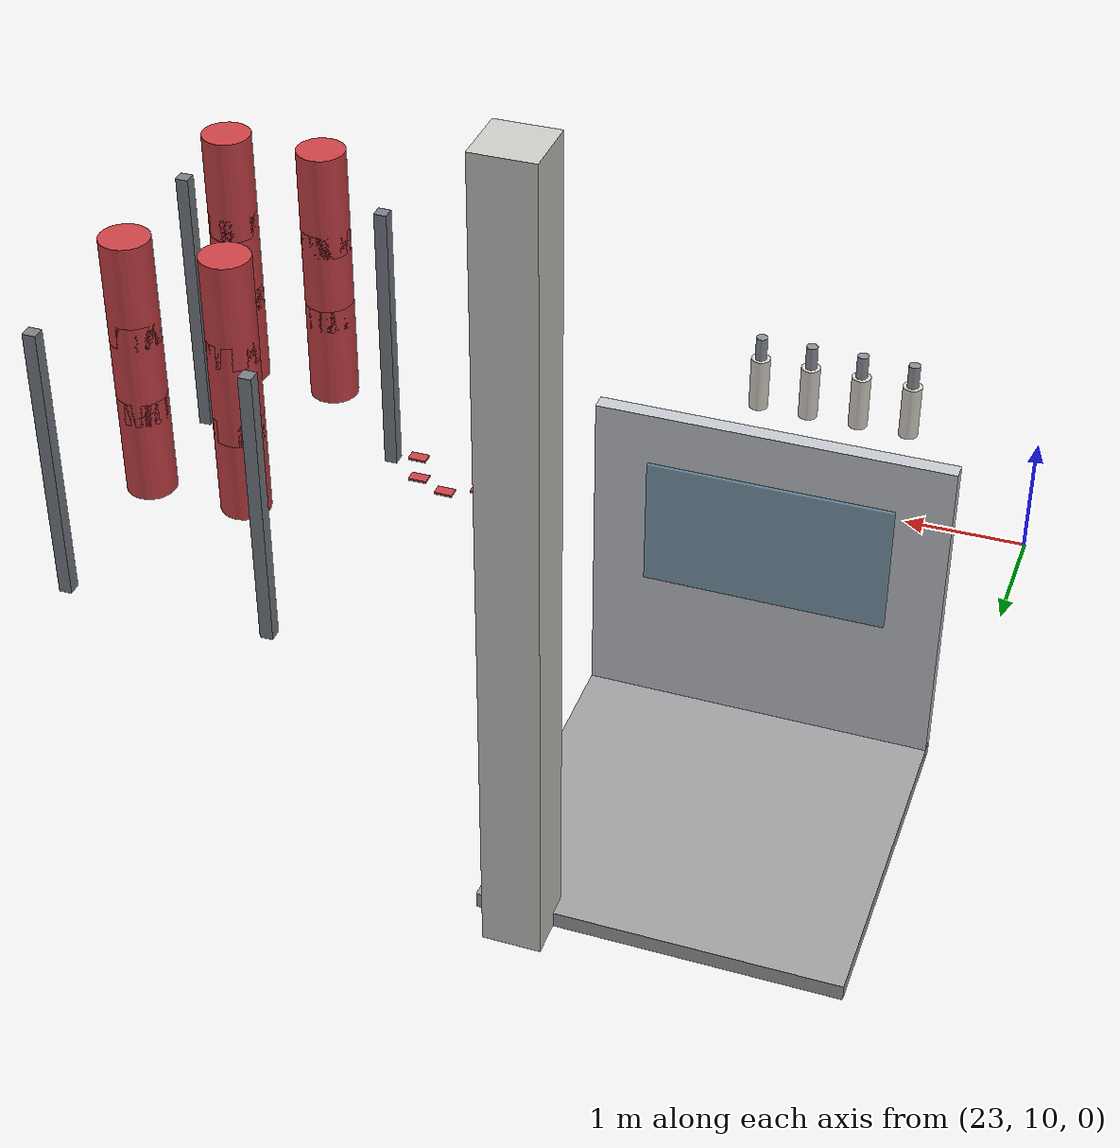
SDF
<sdf version="1.10">
 <world name="textile_mill">
  <model name="col_7">
   <static>true</static>
   <pose>25.450 15.450 3.000 0 0 0</pose>
   <link name="l">
    <collision name="c"><geometry><box><size>0.420 0.420 6.000</size></box></geometry></collision>
    <visual name="v">
     <geometry><box><size>0.420 0.420 6.000</size></box></geometry>
     <material>
      <ambient>0.800 0.800 0.780 1.0</ambient>
      <diffuse>0.800 0.800 0.780 1.0</diffuse>
      <specular>0.18 0.18 0.18 1</specular>
      <pbr><metal><roughness>0.85</roughness><metalness>0.0</metalness></metal></pbr>
     </material>
    </visual>
   </link>
  </model>
  <model name="slot_storage_red_slot_2_0">
   <static>true</static>
   <pose>28.200 10.500 0.012 0 0 0</pose>
   <link name="l">
    <visual name="v">
     <geometry><box><size>0.160 0.100 0.020</size></box></geometry>
     <material>
      <ambient>0.800 0.260 0.280 1.0</ambient>
      <diffuse>0.800 0.260 0.280 1.0</diffuse>
      <specular>0.18 0.18 0.18 1</specular>
      <pbr><metal><roughness>0.65</roughness><metalness>0.0</metalness></metal></pbr>
     </material>
    </visual>
   </link>
  </model>
  <model name="slot_storage_red_slot_2_1">
   <static>true</static>
   <pose>28.083 10.783 0.012 0 0 0</pose>
   <link name="l">
    <visual name="v">
     <geometry><box><size>0.160 0.100 0.020</size></box></geometry>
     <material>
      <ambient>0.800 0.260 0.280 1.0</ambient>
      <diffuse>0.800 0.260 0.280 1.0</diffuse>
      <specular>0.18 0.18 0.18 1</specular>
      <pbr><metal><roughness>0.65</roughness><metalness>0.0</metalness></metal></pbr>
     </material>
    </visual>
   </link>
  </model>
  <model name="slot_storage_red_slot_2_2">
   <static>true</static>
   <pose>27.800 10.900 0.012 0 0 0</pose>
   <link name="l">
    <visual name="v">
     <geometry><box><size>0.160 0.100 0.020</size></box></geometry>
     <material>
      <ambient>0.800 0.260 0.280 1.0</ambient>
      <diffuse>0.800 0.260 0.280 1.0</diffuse>
      <specular>0.18 0.18 0.18 1</specular>
      <pbr><metal><roughness>0.65</roughness><metalness>0.0</metalness></metal></pbr>
     </material>
    </visual>
   </link>
  </model>
  <model name="slot_storage_red_slot_2_3">
   <static>true</static>
   <pose>27.517 10.783 0.012 0 0 0</pose>
   <link name="l">
    <visual name="v">
     <geometry><box><size>0.160 0.100 0.020</size></box></geometry>
     <material>
      <ambient>0.800 0.260 0.280 1.0</ambient>
      <diffuse>0.800 0.260 0.280 1.0</diffuse>
      <specular>0.18 0.18 0.18 1</specular>
      <pbr><metal><roughness>0.65</roughness><metalness>0.0</metalness></metal></pbr>
     </material>
    </visual>
   </link>
  </model>
  <model name="slot_storage_red_slot_2_4">
   <static>true</static>
   <pose>27.400 10.500 0.012 0 0 0</pose>
   <link name="l">
    <visual name="v">
     <geometry><box><size>0.160 0.100 0.020</size></box></geometry>
     <material>
      <ambient>0.800 0.260 0.280 1.0</ambient>
      <diffuse>0.800 0.260 0.280 1.0</diffuse>
      <specular>0.18 0.18 0.18 1</specular>
      <pbr><metal><roughness>0.65</roughness><metalness>0.0</metalness></metal></pbr>
     </material>
    </visual>
   </link>
  </model>
  <model name="hz_red_2_0">
   <static>true</static>
   <pose>27.180 10.500 0.012 0 0 0</pose>
   <link name="l">
    <visual name="v">
     <geometry><box><size>0.160 1.050 0.020</size></box></geometry>
     <material>
      <ambient>0.950 0.820 0.100 1.0</ambient>
      <diffuse>0.950 0.820 0.100 1.0</diffuse>
      <specular>0.18 0.18 0.18 1</specular>
      <pbr><metal><roughness>0.65</roughness><metalness>0.0</metalness></metal></pbr>
     </material>
    </visual>
   </link>
  </model>
  <model name="roving_machine_1_bob_1_3">
   <static>true</static>
   <pose>23.900 10.940 1.740 0.0000 0.0000 0.0000</pose>
   <link name="l">
    <collision name="c">
     <geometry><cylinder><radius>0.075</radius><length>0.440</length></cylinder></geometry>
    </collision>
    <visual name="v">
     <geometry><cylinder><radius>0.075</radius><length>0.440</length></cylinder></geometry>
     <material>
      <ambient>0.860 0.840 0.800 1.0</ambient>
      <diffuse>0.860 0.840 0.800 1.0</diffuse>
      <specular>0.18 0.18 0.18 1</specular>
      <pbr><metal><roughness>0.65</roughness><metalness>0.0</metalness></metal></pbr>
     </material>
    </visual>
   </link>
  </model>
  <model name="roving_machine_1_fly_1_3">
   <static>true</static>
   <pose>23.900 10.940 2.020 0.0000 0.0000 0.0000</pose>
   <link name="l">
    <collision name="c">
     <geometry><cylinder><radius>0.045</radius><length>0.260</length></cylinder></geometry>
    </collision>
    <visual name="v">
     <geometry><cylinder><radius>0.045</radius><length>0.260</length></cylinder></geometry>
     <material>
      <ambient>0.550 0.570 0.600 1.0</ambient>
      <diffuse>0.550 0.570 0.600 1.0</diffuse>
      <specular>0.18 0.18 0.18 1</specular>
      <pbr><metal><roughness>0.25</roughness><metalness>0.7</metalness></metal></pbr>
     </material>
    </visual>
   </link>
  </model>
  <model name="roving_machine_1_bob_1_4">
   <static>true</static>
   <pose>24.300 10.940 1.740 0.0000 0.0000 0.0000</pose>
   <link name="l">
    <collision name="c">
     <geometry><cylinder><radius>0.075</radius><length>0.440</length></cylinder></geometry>
    </collision>
    <visual name="v">
     <geometry><cylinder><radius>0.075</radius><length>0.440</length></cylinder></geometry>
     <material>
      <ambient>0.860 0.840 0.800 1.0</ambient>
      <diffuse>0.860 0.840 0.800 1.0</diffuse>
      <specular>0.18 0.18 0.18 1</specular>
      <pbr><metal><roughness>0.65</roughness><metalness>0.0</metalness></metal></pbr>
     </material>
    </visual>
   </link>
  </model>
  <model name="roving_machine_1_fly_1_4">
   <static>true</static>
   <pose>24.300 10.940 2.020 0.0000 0.0000 0.0000</pose>
   <link name="l">
    <collision name="c">
     <geometry><cylinder><radius>0.045</radius><length>0.260</length></cylinder></geometry>
    </collision>
    <visual name="v">
     <geometry><cylinder><radius>0.045</radius><length>0.260</length></cylinder></geometry>
     <material>
      <ambient>0.550 0.570 0.600 1.0</ambient>
      <diffuse>0.550 0.570 0.600 1.0</diffuse>
      <specular>0.18 0.18 0.18 1</specular>
      <pbr><metal><roughness>0.25</roughness><metalness>0.7</metalness></metal></pbr>
     </material>
    </visual>
   </link>
  </model>
  <model name="roving_machine_1_bob_1_5">
   <static>true</static>
   <pose>24.700 10.940 1.740 0.0000 0.0000 0.0000</pose>
   <link name="l">
    <collision name="c">
     <geometry><cylinder><radius>0.075</radius><length>0.440</length></cylinder></geometry>
    </collision>
    <visual name="v">
     <geometry><cylinder><radius>0.075</radius><length>0.440</length></cylinder></geometry>
     <material>
      <ambient>0.860 0.840 0.800 1.0</ambient>
      <diffuse>0.860 0.840 0.800 1.0</diffuse>
      <specular>0.18 0.18 0.18 1</specular>
      <pbr><metal><roughness>0.65</roughness><metalness>0.0</metalness></metal></pbr>
     </material>
    </visual>
   </link>
  </model>
  <model name="roving_machine_1_fly_1_5">
   <static>true</static>
   <pose>24.700 10.940 2.020 0.0000 0.0000 0.0000</pose>
   <link name="l">
    <collision name="c">
     <geometry><cylinder><radius>0.045</radius><length>0.260</length></cylinder></geometry>
    </collision>
    <visual name="v">
     <geometry><cylinder><radius>0.045</radius><length>0.260</length></cylinder></geometry>
     <material>
      <ambient>0.550 0.570 0.600 1.0</ambient>
      <diffuse>0.550 0.570 0.600 1.0</diffuse>
      <specular>0.18 0.18 0.18 1</specular>
      <pbr><metal><roughness>0.25</roughness><metalness>0.7</metalness></metal></pbr>
     </material>
    </visual>
   </link>
  </model>
  <model name="roving_machine_1_bob_1_6">
   <static>true</static>
   <pose>25.100 10.940 1.740 0.0000 0.0000 0.0000</pose>
   <link name="l">
    <collision name="c">
     <geometry><cylinder><radius>0.075</radius><length>0.440</length></cylinder></geometry>
    </collision>
    <visual name="v">
     <geometry><cylinder><radius>0.075</radius><length>0.440</length></cylinder></geometry>
     <material>
      <ambient>0.860 0.840 0.800 1.0</ambient>
      <diffuse>0.860 0.840 0.800 1.0</diffuse>
      <specular>0.18 0.18 0.18 1</specular>
      <pbr><metal><roughness>0.65</roughness><metalness>0.0</metalness></metal></pbr>
     </material>
    </visual>
   </link>
  </model>
  <model name="roving_machine_1_fly_1_6">
   <static>true</static>
   <pose>25.100 10.940 2.020 0.0000 0.0000 0.0000</pose>
   <link name="l">
    <collision name="c">
     <geometry><cylinder><radius>0.045</radius><length>0.260</length></cylinder></geometry>
    </collision>
    <visual name="v">
     <geometry><cylinder><radius>0.045</radius><length>0.260</length></cylinder></geometry>
     <material>
      <ambient>0.550 0.570 0.600 1.0</ambient>
      <diffuse>0.550 0.570 0.600 1.0</diffuse>
      <specular>0.18 0.18 0.18 1</specular>
      <pbr><metal><roughness>0.25</roughness><metalness>0.7</metalness></metal></pbr>
     </material>
    </visual>
   </link>
  </model>
  <model name="roving_machine_1_panel">
   <static>true</static>
   <pose>24.900 11.220 1.060 0 0 0</pose>
   <link name="l">
    <collision name="c"><geometry><box><size>0.440 0.100 0.380</size></box></geometry></collision>
    <visual name="v">
     <geometry><box><size>0.440 0.100 0.380</size></box></geometry>
     <material>
      <ambient>0.160 0.170 0.190 1.0</ambient>
      <diffuse>0.160 0.170 0.190 1.0</diffuse>
      <specular>0.18 0.18 0.18 1</specular>
      <pbr><metal><roughness>0.65</roughness><metalness>0.0</metalness></metal></pbr>
     </material>
    </visual>
   </link>
  </model>
  <model name="roving_machine_1_screen">
   <static>true</static>
   <pose>24.900 11.270 1.080 0 0 0</pose>
   <link name="l">
    <collision name="c"><geometry><box><size>0.340 0.030 0.260</size></box></geometry></collision>
    <visual name="v">
     <geometry><box><size>0.340 0.030 0.260</size></box></geometry>
     <material>
      <ambient>0.200 0.550 0.720 1.0</ambient>
      <diffuse>0.200 0.550 0.720 1.0</diffuse>
      <specular>0.18 0.18 0.18 1</specular>
      <pbr><metal><roughness>0.65</roughness><metalness>0.0</metalness></metal></pbr>
     </material>
    </visual>
   </link>
  </model>
  <model name="rack_red_can_0_4_a">
   <static>true</static>
   <pose>28.882 10.670 1.120 0.0000 0.0000 0.0000</pose>
   <link name="l">
    <collision name="c">
     <geometry><cylinder><radius>0.205</radius><length>0.900</length></cylinder></geometry>
    </collision>
    <visual name="v">
     <geometry><cylinder><radius>0.205</radius><length>0.900</length></cylinder></geometry>
     <material>
      <ambient>0.800 0.260 0.280 1.0</ambient>
      <diffuse>0.800 0.260 0.280 1.0</diffuse>
      <specular>0.18 0.18 0.18 1</specular>
      <pbr><metal><roughness>0.6</roughness><metalness>0.0</metalness></metal></pbr>
     </material>
    </visual>
   </link>
  </model>
  <model name="rack_red_can_0_4_b">
   <static>true</static>
   <pose>29.718 10.670 1.120 0.0000 0.0000 0.0000</pose>
   <link name="l">
    <collision name="c">
     <geometry><cylinder><radius>0.205</radius><length>0.900</length></cylinder></geometry>
    </collision>
    <visual name="v">
     <geometry><cylinder><radius>0.205</radius><length>0.900</length></cylinder></geometry>
     <material>
      <ambient>0.800 0.260 0.280 1.0</ambient>
      <diffuse>0.800 0.260 0.280 1.0</diffuse>
      <specular>0.18 0.18 0.18 1</specular>
      <pbr><metal><roughness>0.6</roughness><metalness>0.0</metalness></metal></pbr>
     </material>
    </visual>
   </link>
  </model>
  <model name="rack_red_can_0_5_a">
   <static>true</static>
   <pose>28.882 12.450 1.120 0.0000 0.0000 0.0000</pose>
   <link name="l">
    <collision name="c">
     <geometry><cylinder><radius>0.205</radius><length>0.900</length></cylinder></geometry>
    </collision>
    <visual name="v">
     <geometry><cylinder><radius>0.205</radius><length>0.900</length></cylinder></geometry>
     <material>
      <ambient>0.800 0.260 0.280 1.0</ambient>
      <diffuse>0.800 0.260 0.280 1.0</diffuse>
      <specular>0.18 0.18 0.18 1</specular>
      <pbr><metal><roughness>0.6</roughness><metalness>0.0</metalness></metal></pbr>
     </material>
    </visual>
   </link>
  </model>
  <model name="rack_red_can_0_5_b">
   <static>true</static>
   <pose>29.718 12.450 1.120 0.0000 0.0000 0.0000</pose>
   <link name="l">
    <collision name="c">
     <geometry><cylinder><radius>0.205</radius><length>0.900</length></cylinder></geometry>
    </collision>
    <visual name="v">
     <geometry><cylinder><radius>0.205</radius><length>0.900</length></cylinder></geometry>
     <material>
      <ambient>0.800 0.260 0.280 1.0</ambient>
      <diffuse>0.800 0.260 0.280 1.0</diffuse>
      <specular>0.18 0.18 0.18 1</specular>
      <pbr><metal><roughness>0.6</roughness><metalness>0.0</metalness></metal></pbr>
     </material>
    </visual>
   </link>
  </model>
  <model name="rack_red_can_1_4_a">
   <static>true</static>
   <pose>28.882 10.670 1.820 0.0000 0.0000 0.0000</pose>
   <link name="l">
    <collision name="c">
     <geometry><cylinder><radius>0.205</radius><length>0.900</length></cylinder></geometry>
    </collision>
    <visual name="v">
     <geometry><cylinder><radius>0.205</radius><length>0.900</length></cylinder></geometry>
     <material>
      <ambient>0.800 0.260 0.280 1.0</ambient>
      <diffuse>0.800 0.260 0.280 1.0</diffuse>
      <specular>0.18 0.18 0.18 1</specular>
      <pbr><metal><roughness>0.6</roughness><metalness>0.0</metalness></metal></pbr>
     </material>
    </visual>
   </link>
  </model>
  <model name="rack_red_can_1_4_b">
   <static>true</static>
   <pose>29.718 10.670 1.820 0.0000 0.0000 0.0000</pose>
   <link name="l">
    <collision name="c">
     <geometry><cylinder><radius>0.205</radius><length>0.900</length></cylinder></geometry>
    </collision>
    <visual name="v">
     <geometry><cylinder><radius>0.205</radius><length>0.900</length></cylinder></geometry>
     <material>
      <ambient>0.800 0.260 0.280 1.0</ambient>
      <diffuse>0.800 0.260 0.280 1.0</diffuse>
      <specular>0.18 0.18 0.18 1</specular>
      <pbr><metal><roughness>0.6</roughness><metalness>0.0</metalness></metal></pbr>
     </material>
    </visual>
   </link>
  </model>
  <model name="rack_red_can_1_5_a">
   <static>true</static>
   <pose>28.882 12.450 1.820 0.0000 0.0000 0.0000</pose>
   <link name="l">
    <collision name="c">
     <geometry><cylinder><radius>0.205</radius><length>0.900</length></cylinder></geometry>
    </collision>
    <visual name="v">
     <geometry><cylinder><radius>0.205</radius><length>0.900</length></cylinder></geometry>
     <material>
      <ambient>0.800 0.260 0.280 1.0</ambient>
      <diffuse>0.800 0.260 0.280 1.0</diffuse>
      <specular>0.18 0.18 0.18 1</specular>
      <pbr><metal><roughness>0.6</roughness><metalness>0.0</metalness></metal></pbr>
     </material>
    </visual>
   </link>
  </model>
  <model name="rack_red_can_1_5_b">
   <static>true</static>
   <pose>29.718 12.450 1.820 0.0000 0.0000 0.0000</pose>
   <link name="l">
    <collision name="c">
     <geometry><cylinder><radius>0.205</radius><length>0.900</length></cylinder></geometry>
    </collision>
    <visual name="v">
     <geometry><cylinder><radius>0.205</radius><length>0.900</length></cylinder></geometry>
     <material>
      <ambient>0.800 0.260 0.280 1.0</ambient>
      <diffuse>0.800 0.260 0.280 1.0</diffuse>
      <specular>0.18 0.18 0.18 1</specular>
      <pbr><metal><roughness>0.6</roughness><metalness>0.0</metalness></metal></pbr>
     </material>
    </visual>
   </link>
  </model>
  <model name="rack_red_can_2_4_a">
   <static>true</static>
   <pose>28.882 10.670 2.520 0.0000 0.0000 0.0000</pose>
   <link name="l">
    <collision name="c">
     <geometry><cylinder><radius>0.205</radius><length>0.900</length></cylinder></geometry>
    </collision>
    <visual name="v">
     <geometry><cylinder><radius>0.205</radius><length>0.900</length></cylinder></geometry>
     <material>
      <ambient>0.800 0.260 0.280 1.0</ambient>
      <diffuse>0.800 0.260 0.280 1.0</diffuse>
      <specular>0.18 0.18 0.18 1</specular>
      <pbr><metal><roughness>0.6</roughness><metalness>0.0</metalness></metal></pbr>
     </material>
    </visual>
   </link>
  </model>
  <model name="rack_red_can_2_4_b">
   <static>true</static>
   <pose>29.718 10.670 2.520 0.0000 0.0000 0.0000</pose>
   <link name="l">
    <collision name="c">
     <geometry><cylinder><radius>0.205</radius><length>0.900</length></cylinder></geometry>
    </collision>
    <visual name="v">
     <geometry><cylinder><radius>0.205</radius><length>0.900</length></cylinder></geometry>
     <material>
      <ambient>0.800 0.260 0.280 1.0</ambient>
      <diffuse>0.800 0.260 0.280 1.0</diffuse>
      <specular>0.18 0.18 0.18 1</specular>
      <pbr><metal><roughness>0.6</roughness><metalness>0.0</metalness></metal></pbr>
     </material>
    </visual>
   </link>
  </model>
  <model name="rack_red_can_2_5_a">
   <static>true</static>
   <pose>28.882 12.450 2.520 0.0000 0.0000 0.0000</pose>
   <link name="l">
    <collision name="c">
     <geometry><cylinder><radius>0.205</radius><length>0.900</length></cylinder></geometry>
    </collision>
    <visual name="v">
     <geometry><cylinder><radius>0.205</radius><length>0.900</length></cylinder></geometry>
     <material>
      <ambient>0.800 0.260 0.280 1.0</ambient>
      <diffuse>0.800 0.260 0.280 1.0</diffuse>
      <specular>0.18 0.18 0.18 1</specular>
      <pbr><metal><roughness>0.6</roughness><metalness>0.0</metalness></metal></pbr>
     </material>
    </visual>
   </link>
  </model>
  <model name="rack_red_can_2_5_b">
   <static>true</static>
   <pose>29.718 12.450 2.520 0.0000 0.0000 0.0000</pose>
   <link name="l">
    <collision name="c">
     <geometry><cylinder><radius>0.205</radius><length>0.900</length></cylinder></geometry>
    </collision>
    <visual name="v">
     <geometry><cylinder><radius>0.205</radius><length>0.900</length></cylinder></geometry>
     <material>
      <ambient>0.800 0.260 0.280 1.0</ambient>
      <diffuse>0.800 0.260 0.280 1.0</diffuse>
      <specular>0.18 0.18 0.18 1</specular>
      <pbr><metal><roughness>0.6</roughness><metalness>0.0</metalness></metal></pbr>
     </material>
    </visual>
   </link>
  </model>
  <model name="rack_red_post_3_a">
   <static>true</static>
   <pose>28.410 10.575 1.220 0 0 0</pose>
   <link name="l">
    <collision name="c"><geometry><box><size>0.110 0.110 2.440</size></box></geometry></collision>
    <visual name="v">
     <geometry><box><size>0.110 0.110 2.440</size></box></geometry>
     <material>
      <ambient>0.480 0.500 0.530 1.0</ambient>
      <diffuse>0.480 0.500 0.530 1.0</diffuse>
      <specular>0.18 0.18 0.18 1</specular>
      <pbr><metal><roughness>0.65</roughness><metalness>0.5</metalness></metal></pbr>
     </material>
    </visual>
   </link>
  </model>
  <model name="rack_red_post_3_b">
   <static>true</static>
   <pose>30.190 10.575 1.220 0 0 0</pose>
   <link name="l">
    <collision name="c"><geometry><box><size>0.110 0.110 2.440</size></box></geometry></collision>
    <visual name="v">
     <geometry><box><size>0.110 0.110 2.440</size></box></geometry>
     <material>
      <ambient>0.480 0.500 0.530 1.0</ambient>
      <diffuse>0.480 0.500 0.530 1.0</diffuse>
      <specular>0.18 0.18 0.18 1</specular>
      <pbr><metal><roughness>0.65</roughness><metalness>0.5</metalness></metal></pbr>
     </material>
    </visual>
   </link>
  </model>
  <model name="rack_red_post_4_a">
   <static>true</static>
   <pose>28.410 13.150 1.220 0 0 0</pose>
   <link name="l">
    <collision name="c"><geometry><box><size>0.110 0.110 2.440</size></box></geometry></collision>
    <visual name="v">
     <geometry><box><size>0.110 0.110 2.440</size></box></geometry>
     <material>
      <ambient>0.480 0.500 0.530 1.0</ambient>
      <diffuse>0.480 0.500 0.530 1.0</diffuse>
      <specular>0.18 0.18 0.18 1</specular>
      <pbr><metal><roughness>0.65</roughness><metalness>0.5</metalness></metal></pbr>
     </material>
    </visual>
   </link>
  </model>
  <model name="rack_red_post_4_b">
   <static>true</static>
   <pose>30.190 13.150 1.220 0 0 0</pose>
   <link name="l">
    <collision name="c"><geometry><box><size>0.110 0.110 2.440</size></box></geometry></collision>
    <visual name="v">
     <geometry><box><size>0.110 0.110 2.440</size></box></geometry>
     <material>
      <ambient>0.480 0.500 0.530 1.0</ambient>
      <diffuse>0.480 0.500 0.530 1.0</diffuse>
      <specular>0.18 0.18 0.18 1</specular>
      <pbr><metal><roughness>0.65</roughness><metalness>0.5</metalness></metal></pbr>
     </material>
    </visual>
   </link>
  </model>
  <model name="office_base">
   <static>true</static>
   <pose>24.500 14.100 0.060 0 0 0</pose>
   <link name="l">
    <collision name="c"><geometry><box><size>2.600 2.600 0.120</size></box></geometry></collision>
    <visual name="v">
     <geometry><box><size>2.600 2.600 0.120</size></box></geometry>
     <material>
      <ambient>0.620 0.630 0.640 1.0</ambient>
      <diffuse>0.620 0.630 0.640 1.0</diffuse>
      <specular>0.18 0.18 0.18 1</specular>
      <pbr><metal><roughness>0.65</roughness><metalness>0.0</metalness></metal></pbr>
     </material>
    </visual>
   </link>
  </model>
  <model name="office_wall_s">
   <static>true</static>
   <pose>24.500 12.850 1.300 0 0 0</pose>
   <link name="l">
    <collision name="c"><geometry><box><size>2.600 0.120 2.600</size></box></geometry></collision>
    <visual name="v">
     <geometry><box><size>2.600 0.120 2.600</size></box></geometry>
     <material>
      <ambient>0.780 0.800 0.820 1.0</ambient>
      <diffuse>0.780 0.800 0.820 1.0</diffuse>
      <specular>0.18 0.18 0.18 1</specular>
      <pbr><metal><roughness>0.6</roughness><metalness>0.0</metalness></metal></pbr>
     </material>
    </visual>
   </link>
  </model>
  <model name="office_glass">
   <static>true</static>
   <pose>24.500 12.920 1.700 0 0 0</pose>
   <link name="l">
    <collision name="c"><geometry><box><size>1.800 0.050 1.000</size></box></geometry></collision>
    <visual name="v">
     <geometry><box><size>1.800 0.050 1.000</size></box></geometry>
     <material>
      <ambient>0.350 0.550 0.680 0.55</ambient>
      <diffuse>0.350 0.550 0.680 0.55</diffuse>
      <specular>0.18 0.18 0.18 1</specular>
      <pbr><metal><roughness>0.15</roughness><metalness>0.0</metalness></metal></pbr>
     </material>
    </visual>
   </link>
  </model>
 </world>
</sdf>
